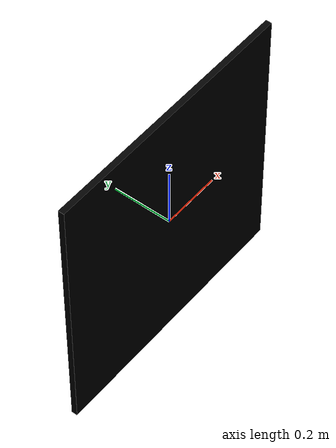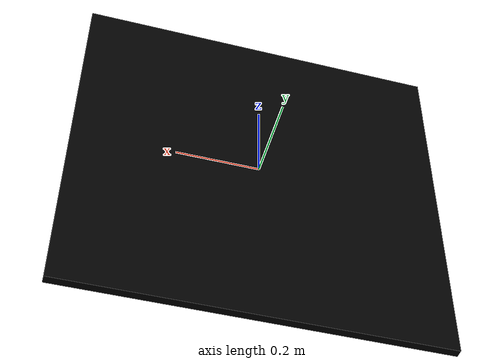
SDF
<?xml version="1.0"?>
<sdf version="1.4">
  <model name="heat_plate_0.9x0.9_e0.5">
    <pose>0 0 0 0 0 0</pose>
    <static>true</static>
    <link name="heat_plate_0.9x0.9_e0.5_link">
      <visual name="heat_plate_0.9x0.9_e0.5_visual">
        <geometry>
          <box>
            <size>0.9 0.02 0.9</size>
          </box>
        </geometry>
        <material>
          <ambient>0 0 0 1</ambient>
          <diffuse>0 0 0 1</diffuse>
          <specular>0 0 0 0</specular>
          <emissive>0.5 0 0 1</emissive>
        </material>
      </visual>
    </link>
  </model>
</sdf>
